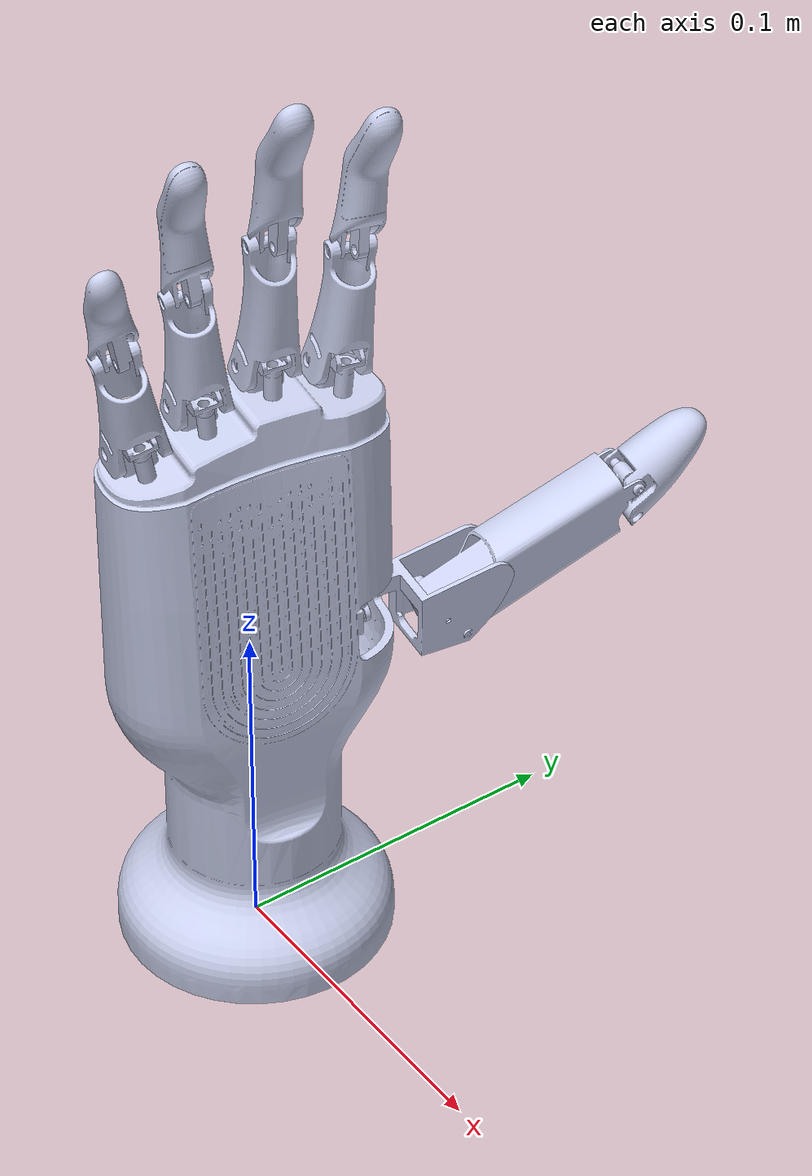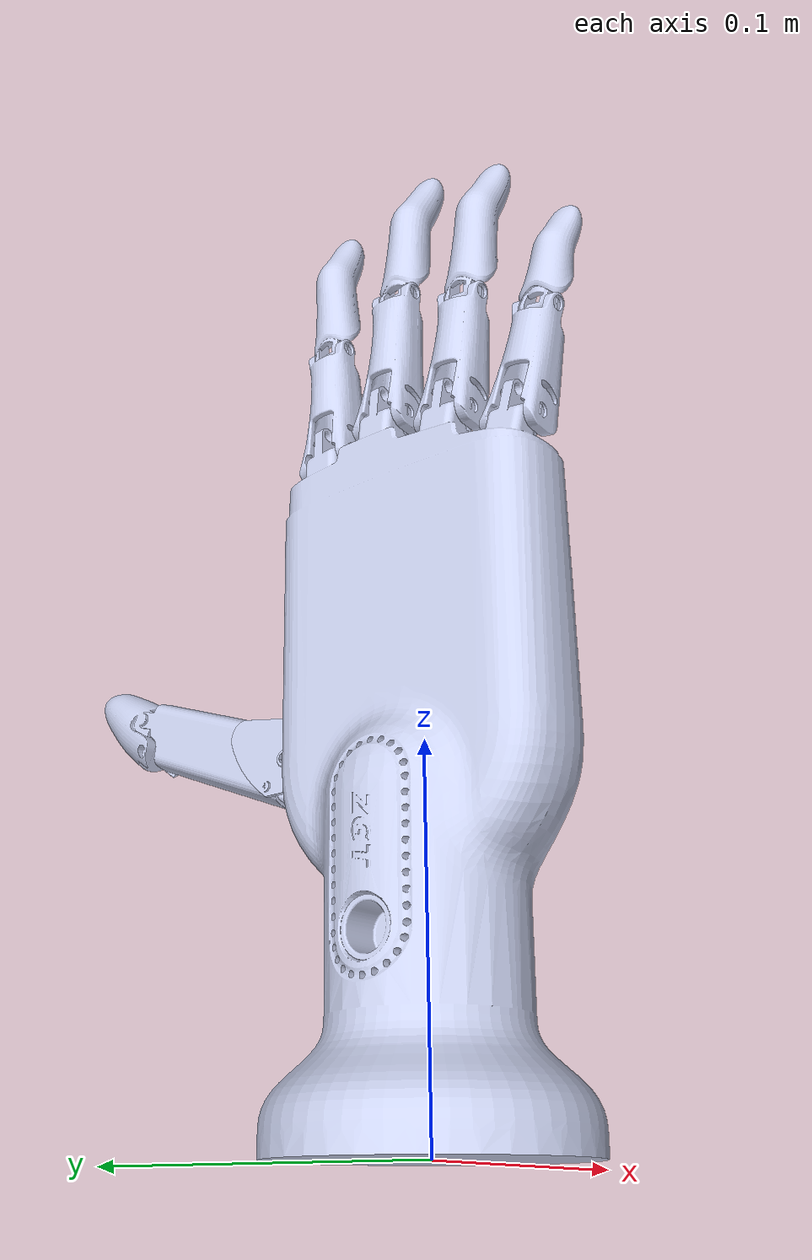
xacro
<?xml version="1.0" encoding="utf-8"?>
<robot name="roger_hand_description" xmlns:xacro="hhttp://ros.org/wiki/xacro">

  <!--****************hand_model*************************-->
  <link name="base_footprint" />

  <joint name="base_footprint_joint" type="fixed">
    <parent link="base_footprint" />
    <child link="base_link" />
  </joint>

  <link name="base_link">
    <inertial>
      <origin xyz="0.000301193114215219 -0.000264421398457275 0.0652369205113283" rpy="0 0 0" />
      <mass value="0.228872847285847" />
      <inertia ixx="0.000222140563333681" ixy="-5.51179587321126E-06" ixz="4.25109212464053E-06" iyy="0.000184277315518036" iyz="-2.0490768609154E-06" izz="0.0001244247124249" />
    </inertial>
    <visual>
      <origin xyz="0 0 0" rpy="0 0 0" />
      <geometry>
        <mesh filename="package://roger_hand_description/meshes/base_link.STL" />
      </geometry>
      <material name="">
        <color rgba="0.792156862745098 0.819607843137255 0.933333333333333 1" />
      </material>
    </visual>
    <collision>
      <origin xyz="0 0 0" rpy="0 0 0" />
      <geometry>
        <mesh filename="package://roger_hand_description/meshes/base_link.STL" />
      </geometry>
    </collision>
  </link>
  <link name="thumb_1_motor_link">
    <inertial>
      <origin xyz="-0.00134659150414089 -0.00232830690416286 -0.00101768813498042" rpy="0 0 0" />
      <mass value="0.000136549603157643" />
      <inertia ixx="1.43067553896894E-09" ixy="-2.14836068910191E-10" ixz="-2.0967911239982E-10" iyy="1.18346925465607E-09" iyz="-3.6254013632139E-10" izz="8.02470711198408E-10" />
    </inertial>
    <visual>
      <origin xyz="0 0 0" rpy="0 0 0" />
      <geometry>
        <mesh filename="package://roger_hand_description/meshes/thumb_1_motor_link.STL" />
      </geometry>
      <material name="">
        <color rgba="0.792156862745098 0.819607843137255 0.933333333333333 1" />
      </material>
    </visual>
    <collision>
      <origin xyz="0 0 0" rpy="0 0 0" />
      <geometry>
        <mesh filename="package://roger_hand_description/meshes/thumb_1_motor_link.STL" />
      </geometry>
    </collision>
  </link>
  <joint name="thumb_1_motor_joint" type="prismatic">
    <origin xyz="0.00931630886065796 0.0299563185120641 0.102471266861136" rpy="-1.57079632784218 0.52435399894999 -0.140329226724159" />
    <parent link="base_link" />
    <child link="thumb_1_motor_link" />
    <axis xyz="0 0 -1" />
    <limit lower="0" upper="0.01" effort="70" velocity="0.023" />
  </joint>
  <link name="index_finger_motor_link">
    <inertial>
      <origin xyz="8.66428082058057E-10 -3.16905789804478E-11 0.00895694288074636" rpy="0 0 0" />
      <mass value="0.000279143293182665" />
      <inertia ixx="2.25311096579505E-09" ixy="1.53236212486341E-10" ixz="-4.61316649584428E-16" iyy="3.25250019800376E-09" iyz="1.69200276195052E-17" izz="2.31951739698569E-09" />
    </inertial>
    <visual>
      <origin xyz="0 0 0" rpy="0 0 0" />
      <geometry>
        <mesh filename="package://roger_hand_description/meshes/index_finger_motor_link.STL" />
      </geometry>
      <material name="">
        <color rgba="0.792156862745098 0.819607843137255 0.933333333333333 1" />
      </material>
    </visual>
    <collision>
      <origin xyz="0 0 0" rpy="0 0 0" />
      <geometry>
        <mesh filename="package://roger_hand_description/meshes/index_finger_motor_link.STL" />
      </geometry>
    </collision>
  </link>
  <joint name="index_finger_motor_joint" type="prismatic">
    <origin xyz="0.00667213455302509 0.0268699837382682 0.175548492534744" rpy="-0.0220810428210388 -0.0849339854195388 -1.56714081321017" />
    <parent link="base_link" />
    <child link="index_finger_motor_link" />
    <axis xyz="-0.25410802663088 0.0507085079778244 -0.965845618109035" />
    <limit lower="0" upper="0.01" effort="70" velocity="0.023" />
  </joint>
  <link name="middle_finger_motor_link">
    <inertial>
      <origin xyz="8.84129401634848E-10 -2.98818469968154E-11 0.00895694285323655" rpy="0 0 0" />
      <mass value="0.00027914329153844" />
      <inertia ixx="2.25216519988671E-09" ixy="1.50117460686703E-10" ixz="-4.6197078484194E-16" iyy="3.253445950516E-09" iyz="1.56606257616648E-17" izz="2.3195173797262E-09" />
    </inertial>
    <visual>
      <origin xyz="0 0 0" rpy="0 0 0" />
      <geometry>
        <mesh filename="package://roger_hand_description/meshes/middle_finger_motor_link.STL" />
      </geometry>
      <material name="">
        <color rgba="0.792156862745098 0.819607843137255 0.933333333333333 1" />
      </material>
    </visual>
    <collision>
      <origin xyz="0 0 0" rpy="0 0 0" />
      <geometry>
        <mesh filename="package://roger_hand_description/meshes/middle_finger_motor_link.STL" />
      </geometry>
    </collision>
  </link>
  <joint name="middle_finger_motor_joint" type="prismatic">
    <origin xyz="0.00245528359604117 0.00770352323916319 0.180400049666745" rpy="0 0 -1.57079445110126" />
    <parent link="base_link" />
    <child link="middle_finger_motor_link" />
    <axis xyz="0 0 -1" />
    <limit lower="0" upper="0.01" effort="70" velocity="0.023" />
  </joint>
  <link name="ring_finger_motor_link">
    <inertial>
      <origin xyz="9.0514886211257E-10 -3.04224978542322E-11 0.00895694281253499" rpy="0 0 0" />
      <mass value="0.000279143289517526" />
      <inertia ixx="2.25200557117849E-09" ixy="1.49584078143445E-10" ixz="-4.69268853648811E-16" iyy="3.25360555246191E-09" iyz="1.57839057166933E-17" izz="2.31951735934725E-09" />
    </inertial>
    <visual>
      <origin xyz="0 0 0" rpy="0 0 0" />
      <geometry>
        <mesh filename="package://roger_hand_description/meshes/ring_finger_motor_link.STL" />
      </geometry>
      <material name="">
        <color rgba="0.792156862745098 0.819607843137255 0.933333333333333 1" />
      </material>
    </visual>
    <collision>
      <origin xyz="0 0 0" rpy="0 0 0" />
      <geometry>
        <mesh filename="package://roger_hand_description/meshes/ring_finger_motor_link.STL" />
      </geometry>
    </collision>
  </link>
  <joint name="ring_finger_motor_joint" type="prismatic">
    <origin xyz="0.000989608862751734 -0.011866526598417 0.175548493891005" rpy="0.00353236602410263 0.0876796909025306 -1.57076973173837" />
    <parent link="base_link" />
    <child link="ring_finger_motor_link" />
    <axis xyz="0 0 -1" />
    <limit lower="0" upper="0.01" effort="70" velocity="0.023" />
  </joint>
  <link name="little_finger_motor_link">
    <inertial>
      <origin xyz="9.24312123368187E-10 -3.22243169648129E-11 0.00895694276319375" rpy="0 0 0" />
      <mass value="0.000279143287608689" />
      <inertia ixx="2.25230612319198E-09" ixy="1.50586689859279E-10" ixz="-4.87116646461309E-16" iyy="3.25330495748556E-09" iyz="1.6974459438383E-17" izz="2.31951734092572E-09" />
    </inertial>
    <visual>
      <origin xyz="0 0 0" rpy="0 0 0" />
      <geometry>
        <mesh filename="package://roger_hand_description/meshes/little_finger_motor_link.STL" />
      </geometry>
      <material name="">
        <color rgba="0.792156862745098 0.819607843137255 0.933333333333333 1" />
      </material>
    </visual>
    <collision>
      <origin xyz="0 0 0" rpy="0 0 0" />
      <geometry>
        <mesh filename="package://roger_hand_description/meshes/little_finger_motor_link.STL" />
      </geometry>
    </collision>
  </link>
  <joint name="little_finger_motor_joint" type="prismatic">
    <origin xyz="0.000382261342643034 -0.0304107417018537 0.169122906472072" rpy="0.029207745570334 0.172132987369209 -1.56811868222672" />
    <parent link="base_link" />
    <child link="little_finger_motor_link" />
    <axis xyz="0 0 -1" />
    <limit lower="0" upper="0.01" effort="70" velocity="0.023" />
  </joint>
  <link name="thumb_1_link">
    <inertial>
      <origin xyz="-0.0179027439802645 -0.00369579814016622 -0.000141795697264413" rpy="0 0 0" />
      <mass value="0.00276397506592165" />
      <inertia ixx="2.89622691163446E-07" ixy="-9.44279430523408E-08" ixz="2.48618327747114E-08" iyy="4.58530995285368E-07" iyz="1.88418472275805E-08" izz="5.57264544001481E-07" />
    </inertial>
    <visual>
      <origin xyz="0 0 0" rpy="0 0 0" />
      <geometry>
        <mesh filename="package://roger_hand_description/meshes/thumb_1_link.STL" />
      </geometry>
      <material name="">
        <color rgba="0.792156862745098 0.819607843137255 0.933333333333333 1" />
      </material>
    </visual>
    <collision>
      <origin xyz="0 0 0" rpy="0 0 0" />
      <geometry>
        <mesh filename="package://roger_hand_description/meshes/thumb_1_link.STL" />
      </geometry>
    </collision>
  </link>
  <joint name="thumb_1_joint" type="revolute">
    <origin xyz="0.0132254533115971 0.0271360397292781 0.108531267532083" rpy="-3.14159249850664 0 -1.5707944097144" />
    <parent link="base_link" />
    <child link="thumb_1_link" />
    <axis xyz="0 0 -1" />
    <limit lower="0" upper="0" effort="0" velocity="0" />
    <mimic joint="thumb_1_motor_joint" multiplier="-157" offset="0" />
  </joint>
  <link name="thumb_2_near_knuckle_link">
    <inertial>
      <origin xyz="-0.0238790005730153 0.00540353393523721 -0.00783477106592339" rpy="0 0 0" />
      <mass value="0.0103593890053803" />
      <inertia ixx="7.11776108669314E-07" ixy="7.23223676216444E-07" ixz="4.17631168543445E-13" iyy="2.41258997666417E-06" iyz="-4.42351755837649E-13" izz="2.73517270654393E-06" />
    </inertial>
    <visual>
      <origin xyz="0 0 0" rpy="0 0 0" />
      <geometry>
        <mesh filename="package://roger_hand_description/meshes/thumb_2_near_knuckle_link.STL" />
      </geometry>
      <material name="">
        <color rgba="0.792156862745098 0.819607843137255 0.933333333333333 1" />
      </material>
    </visual>
    <collision>
      <origin xyz="0 0 0" rpy="0 0 0" />
      <geometry>
        <mesh filename="package://roger_hand_description/meshes/thumb_2_near_knuckle_link.STL" />
      </geometry>
    </collision>
  </link>
  <joint name="thumb_2_near_knuckle_joint" type="revolute">
    <origin xyz="-0.021965 0.0012073 0.00336" rpy="-1.5708 -0.08158 0.14566" />
    <parent link="thumb_1_link" />
    <child link="thumb_2_near_knuckle_link" />
    <axis xyz="0 0 -1" />
    <limit lower="0" upper="0" effort="0" velocity="0" />
    <mimic joint="thumb_2_motor_joint" multiplier="105" offset="0" />
  </joint>
  <link name="thumb_2_far_knuckle_link">
    <inertial>
      <origin xyz="-0.0103926992843134 -0.000408082582531166 -0.00826651673655104" rpy="0 0 0" />
      <mass value="0.00539379857072937" />
      <inertia ixx="2.17294641475427E-07" ixy="-7.81195989901626E-08" ixz="-1.79125851265764E-09" iyy="2.97473681793062E-07" iyz="-1.55707780087871E-09" izz="3.08399837830599E-07" />
    </inertial>
    <visual>
      <origin xyz="0 0 0" rpy="0 0 0" />
      <geometry>
        <mesh filename="package://roger_hand_description/meshes/thumb_2_far_knuckle_link.STL" />
      </geometry>
      <material name="">
        <color rgba="0.792156862745098 0.819607843137255 0.933333333333333 1" />
      </material>
    </visual>
    <collision>
      <origin xyz="0 0 0" rpy="0 0 0" />
      <geometry>
        <mesh filename="package://roger_hand_description/meshes/thumb_2_far_knuckle_link.STL" />
      </geometry>
    </collision>
  </link>
  <joint name="thumb_2_far_knuckle_joint" type="revolute">
    <origin xyz="-0.061575 0.018898 -0.01544" rpy="-3.1416 0 0" />
    <parent link="thumb_2_near_knuckle_link" />
    <child link="thumb_2_far_knuckle_link" />
    <axis xyz="0 0 -1" />
    <limit lower="0" upper="0" effort="0" velocity="0" />
    <mimic joint="thumb_2_motor_joint" multiplier="-105" offset="0" />
  </joint>
  <link name="thumb_2_motor_link">
    <inertial>
      <origin xyz="2.38588340140122E-07 -1.08581721502965E-07 0.0108081384520814" rpy="0 0 0" />
      <mass value="0.000110785147622986" />
      <inertia ixx="1.05530608724829E-09" ixy="-2.43433727438706E-11" ixz="-1.67072424155045E-16" iyy="1.01864484554244E-09" iyz="9.28259977414862E-16" izz="4.20185598584072E-10" />
    </inertial>
    <visual>
      <origin xyz="0 0 0" rpy="0 0 0" />
      <geometry>
        <mesh filename="package://roger_hand_description/meshes/thumb_2_motor_link.STL" />
      </geometry>
      <material name="">
        <color rgba="0.792156862745098 0.819607843137255 0.933333333333333 1" />
      </material>
    </visual>
    <collision>
      <origin xyz="0 0 0" rpy="0 0 0" />
      <geometry>
        <mesh filename="package://roger_hand_description/meshes/thumb_2_motor_link.STL" />
      </geometry>
    </collision>
  </link>
  <joint name="thumb_2_motor_joint" type="prismatic">
    <origin xyz="-0.04971 0.01526 -0.00822" rpy="-1.5708 0.46272 1.2733" />
    <parent link="thumb_2_near_knuckle_link" />
    <child link="thumb_2_motor_link" />
    <axis xyz="0 0 -1" />
    <limit lower="0" upper="0.01" effort="70" velocity="0.023" />
  </joint>
  <link name="index_finger_near_knuckle_link">
    <inertial>
      <origin xyz="-0.00886180601732879 -0.0120472731806973 -0.00649946214559654" rpy="0 0 0" />
      <mass value="0.00232887526351644" />
      <inertia ixx="2.27755429460998E-07" ixy="-1.26042214152932E-07" ixz="1.5896521650996E-11" iyy="2.37501968252865E-07" iyz="3.55330286663986E-11" izz="3.34507085242655E-07" />
    </inertial>
    <visual>
      <origin xyz="0 0 0" rpy="0 0 0" />
      <geometry>
        <mesh filename="package://roger_hand_description/meshes/index_finger_near_knuckle_link.STL" />
      </geometry>
      <material name="">
        <color rgba="0.792156862745098 0.819607843137255 0.933333333333333 1" />
      </material>
    </visual>
    <collision>
      <origin xyz="0 0 0" rpy="0 0 0" />
      <geometry>
        <mesh filename="package://roger_hand_description/meshes/index_finger_near_knuckle_link.STL" />
      </geometry>
    </collision>
  </link>
  <joint name="index_finger_near_knuckle_joint" type="revolute">
    <origin xyz="0.0014743 0.035144 0.18594" rpy="-1.7033 0.8504 -0.2455" />
    <parent link="base_link" />
    <child link="index_finger_near_knuckle_link" />
    <axis xyz="0 0 -1" />
    <limit lower="0" upper="0" effort="0" velocity="0" />
    <mimic joint="index_finger_motor_joint" multiplier="-122" offset="0" />
  </joint>
  <link name="index_finger_far_knuckle_link">
    <inertial>
      <origin xyz="-0.0145411575190943 -0.020044494822137 -0.00499967524800357" rpy="0 0 0" />
      <mass value="0.00447951464772177" />
      <inertia ixx="4.08823082200722E-07" ixy="-2.671868762657E-07" ixz="3.58080808557165E-11" iyy="2.72480810951254E-07" iyz="5.0998825926568E-11" izz="6.00693644933007E-07" />
    </inertial>
    <visual>
      <origin xyz="0 0 0" rpy="0 0 0" />
      <geometry>
        <mesh filename="package://roger_hand_description/meshes/index_finger_far_knuckle_link.STL" />
      </geometry>
      <material name="">
        <color rgba="0.792156862745098 0.819607843137255 0.933333333333333 1" />
      </material>
    </visual>
    <collision>
      <origin xyz="0 0 0" rpy="0 0 0" />
      <geometry>
        <mesh filename="package://roger_hand_description/meshes/index_finger_far_knuckle_link.STL" />
      </geometry>
    </collision>
  </link>
  <joint name="index_finger_far_knuckle_joint" type="revolute">
    <origin xyz="-0.024702898060906 -0.02618785959469 -0.0015" rpy="0 0 0" />
    <parent link="index_finger_near_knuckle_link" />
    <child link="index_finger_far_knuckle_link" />
    <axis xyz="0 0 -1" />
    <limit lower="0" upper="0" effort="0" velocity="0" />
    <mimic joint="index_finger_motor_joint" multiplier="-105" offset="0" />
  </joint>
  <link name="middle_finger_near_knuckle_link">
    <inertial>
      <origin xyz="-0.00475231884957457 -0.0167727486935927 -0.00649836729381627" rpy="0 0 0" />
      <mass value="0.00261246564300185" />
      <inertia ixx="4.21456211454973E-07" ixy="-1.40140303494931E-07" ixz="-3.23982296849986E-14" iyy="1.8096976541724E-07" iyz="1.26088934321041E-12" izz="4.61903408062542E-07" />
    </inertial>
    <visual>
      <origin xyz="0 0 0" rpy="0 0 0" />
      <geometry>
        <mesh filename="package://roger_hand_description/meshes/middle_finger_near_knuckle_link.STL" />
      </geometry>
      <material name="">
        <color rgba="0.792156862745098 0.819607843137255 0.933333333333333 1" />
      </material>
    </visual>
    <collision>
      <origin xyz="0 0 0" rpy="0 0 0" />
      <geometry>
        <mesh filename="package://roger_hand_description/meshes/middle_finger_near_knuckle_link.STL" />
      </geometry>
    </collision>
  </link>
  <joint name="middle_finger_near_knuckle_joint" type="revolute">
    <origin xyz="-0.0024036 0.014986 0.1914" rpy="-1.5708 0.50846 -0.14566" />
    <parent link="base_link" />
    <child link="middle_finger_near_knuckle_link" />
    <axis xyz="0 0 -1" />
    <limit lower="0" upper="0" effort="0" velocity="0" />
    <mimic joint="middle_finger_motor_joint" multiplier="-122" offset="0" />
  </joint>
  <link name="middle_finger_far_knuckle_link">
    <inertial>
      <origin xyz="-0.00542945949936143 -0.0260116138840891 -0.0049989385672811" rpy="0 0 0" />
      <mass value="0.00471669892863847" />
      <inertia ixx="6.60428864263132E-07" ixy="-1.26642263408953E-07" ixz="8.29301058421921E-14" iyy="8.98438879567073E-08" iyz="1.57256966368377E-12" izz="6.66590531334071E-07" />
    </inertial>
    <visual>
      <origin xyz="0 0 0" rpy="0 0 0" />
      <geometry>
        <mesh filename="package://roger_hand_description/meshes/middle_finger_far_knuckle_link.STL" />
      </geometry>
      <material name="">
        <color rgba="0.792156862745098 0.819607843137255 0.933333333333333 1" />
      </material>
    </visual>
    <collision>
      <origin xyz="0 0 0" rpy="0 0 0" />
      <geometry>
        <mesh filename="package://roger_hand_description/meshes/middle_finger_far_knuckle_link.STL" />
      </geometry>
    </collision>
  </link>
  <joint name="middle_finger_far_knuckle_joint" type="revolute">
    <origin xyz="-0.015144444197219 -0.038100471452594 -0.00150000270158999" rpy="0 0 0" />
    <parent link="middle_finger_near_knuckle_link" />
    <child link="middle_finger_far_knuckle_link" />
    <axis xyz="0 0 -1" />
    <limit lower="0" upper="0" effort="0" velocity="0" />
    <mimic joint="middle_finger_motor_joint" multiplier="-105" offset="0" />
  </joint>
  <link name="ring_finger_near_knuckle_link">
    <inertial>
      <origin xyz="0.00383648980211888 -0.0144549680793483 -0.00649942159396797" rpy="0 0 0" />
      <mass value="0.00232884525856955" />
      <inertia ixx="3.56774089298551E-07" ixy="2.23141016975735E-08" ixz="-1.8205609444457E-11" iyy="1.08481186974095E-07" iyz="3.61307577646371E-11" izz="3.34505755668309E-07" />
    </inertial>
    <visual>
      <origin xyz="0 0 0" rpy="0 0 0" />
      <geometry>
        <mesh filename="package://roger_hand_description/meshes/ring_finger_near_knuckle_link.STL" />
      </geometry>
      <material name="">
        <color rgba="0.792156862745098 0.819607843137255 0.933333333333333 1" />
      </material>
    </visual>
    <collision>
      <origin xyz="0 0 0" rpy="0 0 0" />
      <geometry>
        <mesh filename="package://roger_hand_description/meshes/ring_finger_near_knuckle_link.STL" />
      </geometry>
    </collision>
  </link>
  <joint name="ring_finger_near_knuckle_joint" type="revolute">
    <origin xyz="-0.0044866 -0.0054897 0.18708" rpy="-1.4835 -0.038725 -0.14905" />
    <parent link="base_link" />
    <child link="ring_finger_near_knuckle_link" />
    <axis xyz="0 0 -1" />
    <limit lower="0" upper="0" effort="0" velocity="0" />
    <mimic joint="ring_finger_motor_joint" multiplier="-122" offset="0" />
  </joint>
  <link name="ring_finger_far_knuckle_link">
    <inertial>
      <origin xyz="0.0065106139508526 -0.0238922175358328 -0.00499970206022921" rpy="0 0 0" />
      <mass value="0.00447950911474519" />
      <inertia ixx="5.86959864149773E-07" ixy="1.23970714130716E-07" ixz="-1.72142001905806E-11" iyy="9.43441200294128E-08" iyz="5.93884522356434E-11" izz="6.00694159987526E-07" />
    </inertial>
    <visual>
      <origin xyz="0 0 0" rpy="0 0 0" />
      <geometry>
        <mesh filename="package://roger_hand_description/meshes/ring_finger_far_knuckle_link.STL" />
      </geometry>
      <material name="">
        <color rgba="0.792156862745098 0.819607843137255 0.933333333333333 1" />
      </material>
    </visual>
    <collision>
      <origin xyz="0 0 0" rpy="0 0 0" />
      <geometry>
        <mesh filename="package://roger_hand_description/meshes/ring_finger_far_knuckle_link.STL" />
      </geometry>
    </collision>
  </link>
  <joint name="ring_finger_far_knuckle_joint" type="revolute">
    <origin xyz="0.00493135252937275 -0.0356611683065735 -0.0015" rpy="0 0 0" />
    <parent link="ring_finger_near_knuckle_link" />
    <child link="ring_finger_far_knuckle_link" />
    <axis xyz="0 0 -1" />
    <limit lower="0" upper="0" effort="0" velocity="0" />
    <mimic joint="ring_finger_motor_joint" multiplier="-105" offset="0" />
  </joint>
  <link name="little_finger_near_knuckle_link">
    <inertial>
      <origin xyz="0.00949162035820438 -0.00869370523685226 -0.00651346901748739" rpy="0 0 0" />
      <mass value="0.002089014936028" />
      <inertia ixx="2.11796277012887E-07" ixy="8.46611462683513E-08" ixz="3.79992639520792E-12" iyy="1.60572286398938E-07" iyz="-4.75325440366702E-12" izz="2.49353803545383E-07" />
    </inertial>
    <visual>
      <origin xyz="0 0 0" rpy="0 0 0" />
      <geometry>
        <mesh filename="package://roger_hand_description/meshes/little_finger_near_knuckle_link.STL" />
      </geometry>
      <material name="">
        <color rgba="0.792156862745098 0.819607843137255 0.933333333333333 1" />
      </material>
    </visual>
    <collision>
      <origin xyz="0 0 0" rpy="0 0 0" />
      <geometry>
        <mesh filename="package://roger_hand_description/meshes/little_finger_near_knuckle_link.STL" />
      </geometry>
    </collision>
  </link>
  <joint name="little_finger_near_knuckle_joint" type="revolute">
    <origin xyz="-0.00458180347035023 -0.0251271893815939 0.181087558188147" rpy="-1.36489905599673 -0.556022217685395 -0.255451898886551" />
    <parent link="base_link" />
    <child link="little_finger_near_knuckle_link" />
    <axis xyz="0 0 -1" />
    <limit lower="0" upper="0" effort="0" velocity="0" />
    <mimic joint="little_finger_motor_joint" multiplier="-122" offset="0" />
  </joint>
  <link name="little_finger_far_knuckle_link">
    <inertial>
      <origin xyz="0.0125584145316533 -0.0118635335183287 -0.00499792760768738" rpy="0 0 0" />
      <mass value="0.00249846166414677" />
      <inertia ixx="9.78368107465239E-08" ixy="6.35156741038364E-08" ixz="-8.20409700469597E-13" iyy="9.18741283417871E-08" iyz="-1.72642577256669E-12" izz="1.48500034918474E-07" />
    </inertial>
    <visual>
      <origin xyz="0 0 0" rpy="0 0 0" />
      <geometry>
        <mesh filename="package://roger_hand_description/meshes/little_finger_far_knuckle_link.STL" />
      </geometry>
      <material name="">
        <color rgba="0.792156862745098 0.819607843137255 0.933333333333333 1" />
      </material>
    </visual>
    <collision>
      <origin xyz="0 0 0" rpy="0 0 0" />
      <geometry>
        <mesh filename="package://roger_hand_description/meshes/little_finger_far_knuckle_link.STL" />
      </geometry>
    </collision>
  </link>
  <joint name="little_finger_far_knuckle_joint" type="revolute">
    <origin xyz="0.020319737968706 -0.0247206162441643 -0.00151626780947" rpy="0 0 0" />
    <parent link="little_finger_near_knuckle_link" />
    <child link="little_finger_far_knuckle_link" />
    <axis xyz="0 0 -1" />
    <limit lower="0" upper="0" effort="0" velocity="0" />
    <mimic joint="little_finger_motor_joint" multiplier="-105" offset="0" />
  </joint>
  <!-- transmission -->
  <transmission name="thumb_1_tran">
    <type>transmission_interface/SimpleTransmission</type>
    <joint name="thumb_1_motor_joint">
      <hardwareInterface>hardware_interface/PositionJointInterface</hardwareInterface>
    </joint>
    <actuator name="thumb_1_motor">
      <hardwareInterface>hardware_interface/PositionJointInterface</hardwareInterface>
      <mechanicalReduction>1</mechanicalReduction>
    </actuator>
  </transmission>

  <transmission name="thumb_2_tran">
    <type>transmission_interface/SimpleTransmission</type>
    <joint name="thumb_2_motor_joint">
      <hardwareInterface>hardware_interface/PositionJointInterface</hardwareInterface>
    </joint>
    <actuator name="thumb_2_motor">
      <hardwareInterface>hardware_interface/PositionJointInterface</hardwareInterface>
      <mechanicalReduction>1</mechanicalReduction>
    </actuator>
  </transmission>

  <transmission name="index_finger_tran">
    <type>transmission_interface/SimpleTransmission</type>
    <joint name="index_finger_motor_joint">
      <hardwareInterface>hardware_interface/PositionJointInterface</hardwareInterface>
    </joint>
    <actuator name="index_finger_motor">
      <hardwareInterface>hardware_interface/PositionJointInterface</hardwareInterface>
      <mechanicalReduction>1</mechanicalReduction>
    </actuator>
  </transmission>

  <transmission name="middle_finger_tran">
    <type>transmission_interface/SimpleTransmission</type>
    <joint name="middle_finger_motor_joint">
      <hardwareInterface>hardware_interface/PositionJointInterface</hardwareInterface>
    </joint>
    <actuator name="middle_finger_motor">
      <hardwareInterface>hardware_interface/PositionJointInterface</hardwareInterface>
      <mechanicalReduction>1</mechanicalReduction>
    </actuator>
  </transmission>

  <transmission name="ring_finger_tran">
    <type>transmission_interface/SimpleTransmission</type>
    <joint name="ring_finger_motor_joint">
      <hardwareInterface>hardware_interface/PositionJointInterface</hardwareInterface>
    </joint>
    <actuator name="ring_finger_motor">
      <hardwareInterface>hardware_interface/PositionJointInterface</hardwareInterface>
      <mechanicalReduction>1</mechanicalReduction>
    </actuator>
  </transmission>

  <transmission name="little_finger_tran">
    <type>transmission_interface/SimpleTransmission</type>
    <joint name="little_finger_motor_joint">
      <hardwareInterface>hardware_interface/PositionJointInterface</hardwareInterface>
    </joint>
    <actuator name="little_finger_motor">
      <hardwareInterface>hardware_interface/PositionJointInterface</hardwareInterface>
      <mechanicalReduction>1</mechanicalReduction>
    </actuator>
  </transmission>

  <!-- gazebo plugin -->
  <gazebo>
    <plugin name="gazebo_ros_control" filename="libgazebo_ros_control.so">
      <robotNamespace>/roger_hand</robotNamespace>
      <robotSimType>gazebo_ros_control/DefaultRobotHWSim</robotSimType>
      <legacyModeNS>true</legacyModeNS>
    </plugin>
  </gazebo>
</robot>
